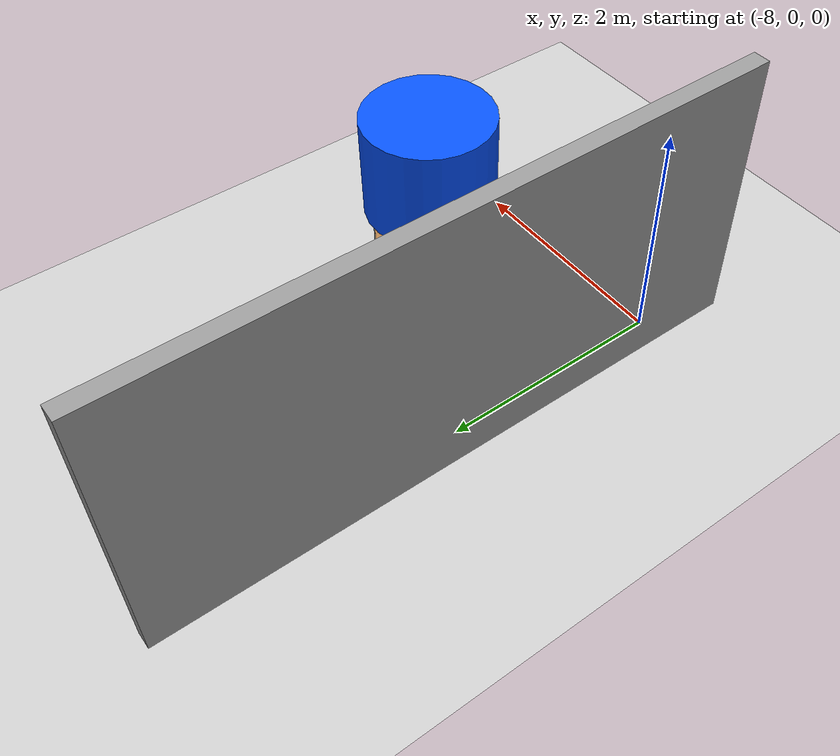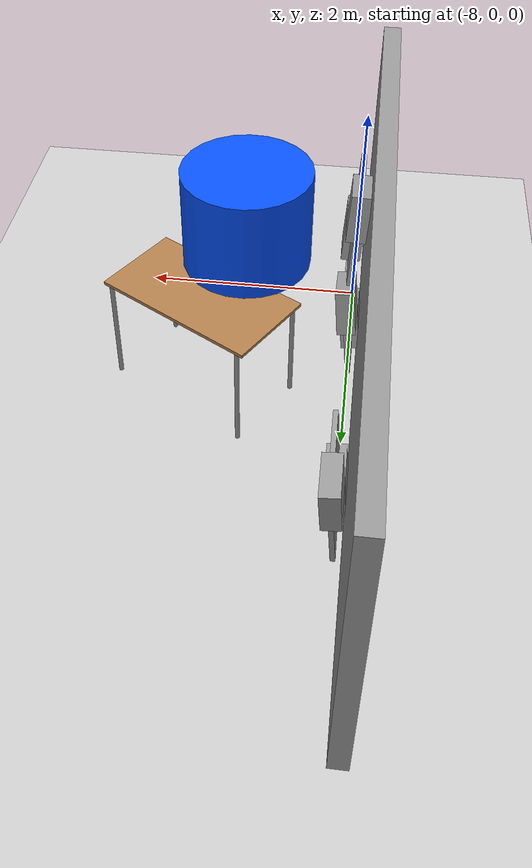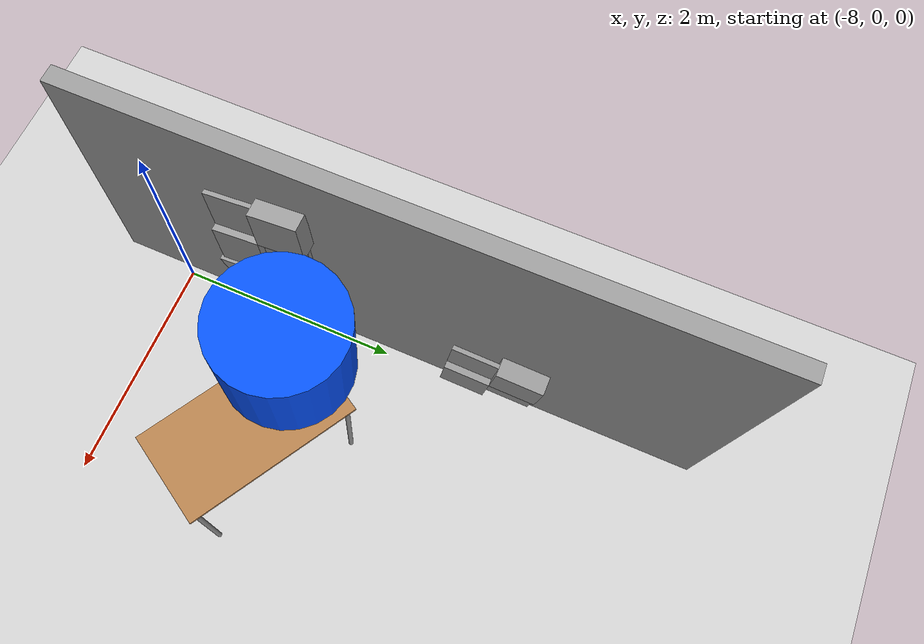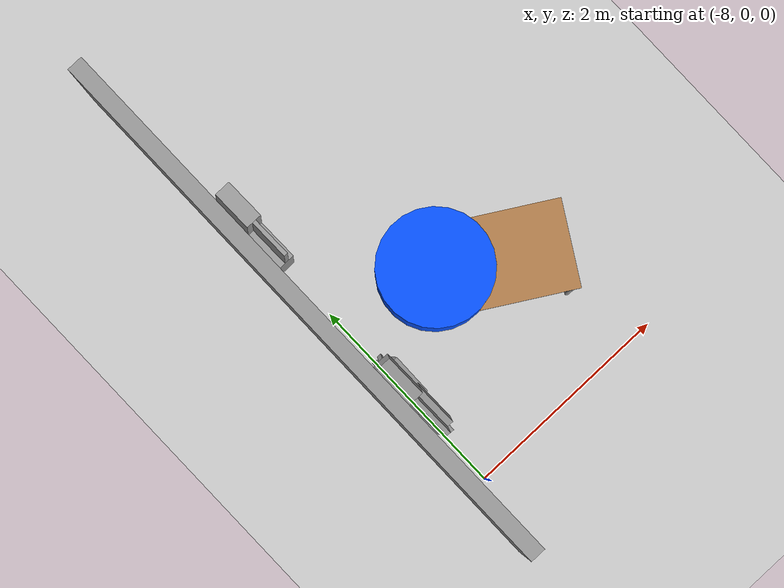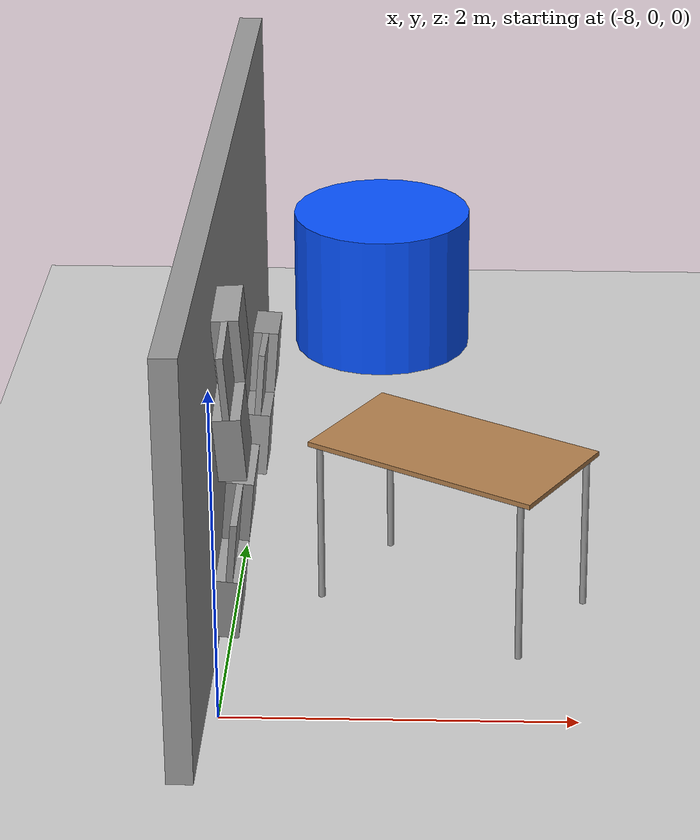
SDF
<sdf version="1.7">
 <world name="default">
  <model name="demo_clean">
   <static>1</static>
   <link name="Wall_0">
    <collision name="Wall_0_Collision">
     <geometry><box><size>5.5 0.15 2.5</size></box></geometry>
     <pose>0 0 1.25 0 -0 0</pose>
     <surface>
      <friction>
       <ode><mu>1</mu><mu2>1</mu2><fdir1>0 0 0</fdir1><slip1>0</slip1><slip2>0</slip2></ode>
       <torsional>
        <coefficient>1</coefficient>
        <patch_radius>0</patch_radius>
        <surface_radius>0</surface_radius>
        <use_patch_radius>1</use_patch_radius>
        <ode><slip>0</slip></ode>
       </torsional>
      </friction>
      <bounce><restitution_coefficient>0</restitution_coefficient><threshold>1e+06</threshold></bounce>
      <contact>
       <collide_without_contact>0</collide_without_contact>
       <collide_without_contact_bitmask>1</collide_without_contact_bitmask>
       <collide_bitmask>1</collide_bitmask>
       <ode>
        <soft_cfm>0</soft_cfm>
        <soft_erp>0.2</soft_erp>
        <kp>1e+13</kp>
        <kd>1</kd>
        <max_vel>0.01</max_vel>
        <min_depth>0</min_depth>
       </ode>
       <bullet>
        <split_impulse>1</split_impulse>
        <split_impulse_penetration_threshold>-0.01</split_impulse_penetration_threshold>
        <soft_cfm>0</soft_cfm>
        <soft_erp>0.2</soft_erp>
        <kp>1e+13</kp>
        <kd>1</kd>
       </bullet>
      </contact>
     </surface>
    </collision>
    <visual name="Wall_0_Visual">
     <geometry><box><size>5.5 0.15 2.5</size></box></geometry>
     <material>
      <script><name>Gazebo/Grey</name><uri>file://media/materials/scripts/gazebo.material</uri></script>
      <ambient>1 1 1 1</ambient>
      <shader type="pixel"><normal_map>default</normal_map></shader>
     </material>
     <pose>0 0 1.25 0 -0 0</pose>
    </visual>
    <pose>-8.14649 2.06618 0 0 0 -1.5708</pose>
   </link>
  </model>
  <model name="static_cylinder_1">
   <pose>-7.14228 1.58994 2 0 -0 0.601069</pose>
   <static>1</static>
   <allow_auto_disable>0</allow_auto_disable>
   <link name="link">
    <collision name="collision">
     <geometry><cylinder><radius>0.5</radius><length>0.8</length></cylinder></geometry>
     <max_contacts>20</max_contacts>
    </collision>
    <visual name="visual">
     <geometry><cylinder><radius>0.5</radius><length>0.8</length></cylinder></geometry>
     <material><ambient>0.0235294 0.321569 1 1</ambient><diffuse>0.0235294 0.321569 1 1</diffuse></material>
    </visual>
   </link>
  </model>
  <model name="ground_plane">
   <static>1</static>
   <link name="link">
    <collision name="collision">
     <geometry><plane><normal>0 0 1</normal><size>100 100</size></plane></geometry>
     <surface>
      <contact><collide_bitmask>65535</collide_bitmask></contact>
      <friction><ode><mu>100</mu><mu2>50</mu2></ode></friction>
     </surface>
    </collision>
    <visual name="visual">
     <cast_shadows>0</cast_shadows>
     <geometry><plane><normal>0 0 1</normal><size>100 100</size></plane></geometry>
     <material>
      <script><uri>file://media/materials/scripts/gazebo.material</uri><name>Gazebo/Grey</name></script>
     </material>
    </visual>
   </link>
  </model>
  <model name="wall_slate_9">
   <static>1</static>
   <link name="link_0">
    <inertial><mass>1</mass></inertial>
    <gravity>0</gravity>
    <visual name="visual">
     <pose>0 0.2 0.2 0 -0 0</pose>
     <geometry><box><size>0.16 0.4 0.4</size></box></geometry>
     <material>
      <lighting>1</lighting>
      <script><uri>file://media/materials/scripts/gazebo.material</uri><name>Gazebo/Grey</name></script>
      <shader type="pixel"><normal_map>__default__</normal_map></shader>
      <ambient>0.3 0.3 0.3 1</ambient>
      <diffuse>0.7 0.7 0.7 1</diffuse>
      <specular>0.01 0.01 0.01 1</specular>
      <emissive>0 0 0 1</emissive>
     </material>
    </visual>
    <visual name="ModelPreview_0::link_0::visual_1">
     <pose>0 0.2 -0.2 0 -0 0</pose>
     <geometry><box><size>0.04 0.4 0.4</size></box></geometry>
     <material>
      <lighting>1</lighting>
      <script><uri>file://media/materials/scripts/gazebo.material</uri><name>Gazebo/Grey</name></script>
      <shader type="pixel"><normal_map>__default__</normal_map></shader>
      <ambient>0.3 0.3 0.3 1</ambient>
      <diffuse>0.7 0.7 0.7 1</diffuse>
      <specular>0.01 0.01 0.01 1</specular>
      <emissive>0 0 0 1</emissive>
     </material>
    </visual>
    <visual name="ModelPreview_0::link_0::visual_2">
     <pose>0 -0.2 0.2 0 -0 0</pose>
     <geometry><box><size>0.04 0.4 0.4</size></box></geometry>
     <material>
      <lighting>1</lighting>
      <script><uri>file://media/materials/scripts/gazebo.material</uri><name>Gazebo/Grey</name></script>
      <shader type="pixel"><normal_map>__default__</normal_map></shader>
      <ambient>0.3 0.3 0.3 1</ambient>
      <diffuse>0.7 0.7 0.7 1</diffuse>
      <specular>0.01 0.01 0.01 1</specular>
      <emissive>0 0 0 1</emissive>
     </material>
    </visual>
    <visual name="ModelPreview_0::link_0::visual_3">
     <pose>0 -0.2 -0.2 0 -0 0</pose>
     <geometry><box><size>0.16 0.4 0.4</size></box></geometry>
     <material>
      <lighting>1</lighting>
      <script><uri>file://media/materials/scripts/gazebo.material</uri><name>Gazebo/Grey</name></script>
      <shader type="pixel"><normal_map>__default__</normal_map></shader>
      <ambient>0.3 0.3 0.3 1</ambient>
      <diffuse>0.7 0.7 0.7 1</diffuse>
      <specular>0.01 0.01 0.01 1</specular>
      <emissive>0 0 0 1</emissive>
     </material>
    </visual>
    <collision name="collision_2">
     <pose>0 -0.2 0.2 0 -0 0</pose>
     <geometry><box><size>0.04 0.4 0.4</size></box></geometry>
     <surface>
      <friction>
       <ode><mu>1</mu><mu2>1</mu2><fdir1>0 0 0</fdir1><slip1>0</slip1><slip2>0</slip2></ode>
       <torsional>
        <coefficient>1</coefficient>
        <patch_radius>0</patch_radius>
        <surface_radius>0</surface_radius>
        <use_patch_radius>1</use_patch_radius>
        <ode><slip>0</slip></ode>
       </torsional>
      </friction>
      <bounce><restitution_coefficient>0</restitution_coefficient><threshold>1e+06</threshold></bounce>
      <contact>
       <collide_without_contact>0</collide_without_contact>
       <collide_without_contact_bitmask>1</collide_without_contact_bitmask>
       <collide_bitmask>1</collide_bitmask>
       <ode>
        <soft_cfm>0</soft_cfm>
        <soft_erp>0.2</soft_erp>
        <kp>1e+13</kp>
        <kd>1</kd>
        <max_vel>0.01</max_vel>
        <min_depth>0</min_depth>
       </ode>
       <bullet>
        <split_impulse>1</split_impulse>
        <split_impulse_penetration_threshold>-0.01</split_impulse_penetration_threshold>
        <soft_cfm>0</soft_cfm>
        <soft_erp>0.2</soft_erp>
        <kp>1e+13</kp>
        <kd>1</kd>
       </bullet>
      </contact>
     </surface>
    </collision>
    <collision name="collision_1">
     <pose>0 0.2 -0.2 0 -0 0</pose>
     <geometry><box><size>0.04 0.4 0.4</size></box></geometry>
     <surface>
      <friction>
       <ode><mu>1</mu><mu2>1</mu2><fdir1>0 0 0</fdir1><slip1>0</slip1><slip2>0</slip2></ode>
       <torsional>
        <coefficient>1</coefficient>
        <patch_radius>0</patch_radius>
        <surface_radius>0</surface_radius>
        <use_patch_radius>1</use_patch_radius>
        <ode><slip>0</slip></ode>
       </torsional>
      </friction>
      <bounce><restitution_coefficient>0</restitution_coefficient><threshold>1e+06</threshold></bounce>
      <contact>
       <collide_without_contact>0</collide_without_contact>
       <collide_without_contact_bitmask>1</collide_without_contact_bitmask>
       <collide_bitmask>1</collide_bitmask>
       <ode>
        <soft_cfm>0</soft_cfm>
        <soft_erp>0.2</soft_erp>
        <kp>1e+13</kp>
        <kd>1</kd>
        <max_vel>0.01</max_vel>
        <min_depth>0</min_depth>
       </ode>
       <bullet>
        <split_impulse>1</split_impulse>
        <split_impulse_penetration_threshold>-0.01</split_impulse_penetration_threshold>
        <soft_cfm>0</soft_cfm>
        <soft_erp>0.2</soft_erp>
        <kp>1e+13</kp>
        <kd>1</kd>
       </bullet>
      </contact>
     </surface>
    </collision>
    <collision name="collision_4">
     <pose>0 0.2 0.2 0 -0 0</pose>
     <geometry><box><size>0.16 0.4 0.4</size></box></geometry>
     <surface>
      <friction>
       <ode><mu>1</mu><mu2>1</mu2><fdir1>0 0 0</fdir1><slip1>0</slip1><slip2>0</slip2></ode>
       <torsional>
        <coefficient>1</coefficient>
        <patch_radius>0</patch_radius>
        <surface_radius>0</surface_radius>
        <use_patch_radius>1</use_patch_radius>
        <ode><slip>0</slip></ode>
       </torsional>
      </friction>
      <bounce><restitution_coefficient>0</restitution_coefficient><threshold>1e+06</threshold></bounce>
      <contact>
       <collide_without_contact>0</collide_without_contact>
       <collide_without_contact_bitmask>1</collide_without_contact_bitmask>
       <collide_bitmask>1</collide_bitmask>
       <ode>
        <soft_cfm>0</soft_cfm>
        <soft_erp>0.2</soft_erp>
        <kp>1e+13</kp>
        <kd>1</kd>
        <max_vel>0.01</max_vel>
        <min_depth>0</min_depth>
       </ode>
       <bullet>
        <split_impulse>1</split_impulse>
        <split_impulse_penetration_threshold>-0.01</split_impulse_penetration_threshold>
        <soft_cfm>0</soft_cfm>
        <soft_erp>0.2</soft_erp>
        <kp>1e+13</kp>
        <kd>1</kd>
       </bullet>
      </contact>
     </surface>
    </collision>
    <collision name="collision_3">
     <pose>0 -0.2 -0.2 0 -0 0</pose>
     <geometry><box><size>0.16 0.4 0.4</size></box></geometry>
     <surface>
      <friction>
       <ode><mu>1</mu><mu2>1</mu2><fdir1>0 0 0</fdir1><slip1>0</slip1><slip2>0</slip2></ode>
       <torsional>
        <coefficient>1</coefficient>
        <patch_radius>0</patch_radius>
        <surface_radius>0</surface_radius>
        <use_patch_radius>1</use_patch_radius>
        <ode><slip>0</slip></ode>
       </torsional>
      </friction>
      <bounce><restitution_coefficient>0</restitution_coefficient><threshold>1e+06</threshold></bounce>
      <contact>
       <collide_without_contact>0</collide_without_contact>
       <collide_without_contact_bitmask>1</collide_without_contact_bitmask>
       <collide_bitmask>1</collide_bitmask>
       <ode>
        <soft_cfm>0</soft_cfm>
        <soft_erp>0.2</soft_erp>
        <kp>1e+13</kp>
        <kd>1</kd>
        <max_vel>0.01</max_vel>
        <min_depth>0</min_depth>
       </ode>
       <bullet>
        <split_impulse>1</split_impulse>
        <split_impulse_penetration_threshold>-0.01</split_impulse_penetration_threshold>
        <soft_cfm>0</soft_cfm>
        <soft_erp>0.2</soft_erp>
        <kp>1e+13</kp>
        <kd>1</kd>
       </bullet>
      </contact>
     </surface>
    </collision>
   </link>
   <pose>-7.97149 0.966181 0.6 0.16 0.1 0.0049</pose>
  </model>
  <model name="wall_slate_18">
   <static>1</static>
   <link name="link_0">
    <inertial><mass>1</mass></inertial>
    <gravity>0</gravity>
    <visual name="visual">
     <pose>0 0.2 0.2 0 -0 0</pose>
     <geometry><box><size>0.16 0.4 0.4</size></box></geometry>
     <material>
      <lighting>1</lighting>
      <script><uri>file://media/materials/scripts/gazebo.material</uri><name>Gazebo/Grey</name></script>
      <shader type="pixel"><normal_map>__default__</normal_map></shader>
      <ambient>0.3 0.3 0.3 1</ambient>
      <diffuse>0.7 0.7 0.7 1</diffuse>
      <specular>0.01 0.01 0.01 1</specular>
      <emissive>0 0 0 1</emissive>
     </material>
    </visual>
    <visual name="ModelPreview_0::link_0::visual_1">
     <pose>0 0.2 -0.2 0 -0 0</pose>
     <geometry><box><size>0.04 0.4 0.4</size></box></geometry>
     <material>
      <lighting>1</lighting>
      <script><uri>file://media/materials/scripts/gazebo.material</uri><name>Gazebo/Grey</name></script>
      <shader type="pixel"><normal_map>__default__</normal_map></shader>
      <ambient>0.3 0.3 0.3 1</ambient>
      <diffuse>0.7 0.7 0.7 1</diffuse>
      <specular>0.01 0.01 0.01 1</specular>
      <emissive>0 0 0 1</emissive>
     </material>
    </visual>
    <visual name="ModelPreview_0::link_0::visual_2">
     <pose>0 -0.2 0.2 0 -0 0</pose>
     <geometry><box><size>0.04 0.4 0.4</size></box></geometry>
     <material>
      <lighting>1</lighting>
      <script><uri>file://media/materials/scripts/gazebo.material</uri><name>Gazebo/Grey</name></script>
      <shader type="pixel"><normal_map>__default__</normal_map></shader>
      <ambient>0.3 0.3 0.3 1</ambient>
      <diffuse>0.7 0.7 0.7 1</diffuse>
      <specular>0.01 0.01 0.01 1</specular>
      <emissive>0 0 0 1</emissive>
     </material>
    </visual>
    <visual name="ModelPreview_0::link_0::visual_3">
     <pose>0 -0.2 -0.2 0 -0 0</pose>
     <geometry><box><size>0.16 0.4 0.4</size></box></geometry>
     <material>
      <lighting>1</lighting>
      <script><uri>file://media/materials/scripts/gazebo.material</uri><name>Gazebo/Grey</name></script>
      <shader type="pixel"><normal_map>__default__</normal_map></shader>
      <ambient>0.3 0.3 0.3 1</ambient>
      <diffuse>0.7 0.7 0.7 1</diffuse>
      <specular>0.01 0.01 0.01 1</specular>
      <emissive>0 0 0 1</emissive>
     </material>
    </visual>
    <collision name="collision_2">
     <pose>0 -0.2 0.2 0 -0 0</pose>
     <geometry><box><size>0.04 0.4 0.4</size></box></geometry>
     <surface>
      <friction>
       <ode><mu>1</mu><mu2>1</mu2><fdir1>0 0 0</fdir1><slip1>0</slip1><slip2>0</slip2></ode>
       <torsional>
        <coefficient>1</coefficient>
        <patch_radius>0</patch_radius>
        <surface_radius>0</surface_radius>
        <use_patch_radius>1</use_patch_radius>
        <ode><slip>0</slip></ode>
       </torsional>
      </friction>
      <bounce><restitution_coefficient>0</restitution_coefficient><threshold>1e+06</threshold></bounce>
      <contact>
       <collide_without_contact>0</collide_without_contact>
       <collide_without_contact_bitmask>1</collide_without_contact_bitmask>
       <collide_bitmask>1</collide_bitmask>
       <ode>
        <soft_cfm>0</soft_cfm>
        <soft_erp>0.2</soft_erp>
        <kp>1e+13</kp>
        <kd>1</kd>
        <max_vel>0.01</max_vel>
        <min_depth>0</min_depth>
       </ode>
       <bullet>
        <split_impulse>1</split_impulse>
        <split_impulse_penetration_threshold>-0.01</split_impulse_penetration_threshold>
        <soft_cfm>0</soft_cfm>
        <soft_erp>0.2</soft_erp>
        <kp>1e+13</kp>
        <kd>1</kd>
       </bullet>
      </contact>
     </surface>
    </collision>
    <collision name="collision_1">
     <pose>0 0.2 -0.2 0 -0 0</pose>
     <geometry><box><size>0.04 0.4 0.4</size></box></geometry>
     <surface>
      <friction>
       <ode><mu>1</mu><mu2>1</mu2><fdir1>0 0 0</fdir1><slip1>0</slip1><slip2>0</slip2></ode>
       <torsional>
        <coefficient>1</coefficient>
        <patch_radius>0</patch_radius>
        <surface_radius>0</surface_radius>
        <use_patch_radius>1</use_patch_radius>
        <ode><slip>0</slip></ode>
       </torsional>
      </friction>
      <bounce><restitution_coefficient>0</restitution_coefficient><threshold>1e+06</threshold></bounce>
      <contact>
       <collide_without_contact>0</collide_without_contact>
       <collide_without_contact_bitmask>1</collide_without_contact_bitmask>
       <collide_bitmask>1</collide_bitmask>
       <ode>
        <soft_cfm>0</soft_cfm>
        <soft_erp>0.2</soft_erp>
        <kp>1e+13</kp>
        <kd>1</kd>
        <max_vel>0.01</max_vel>
        <min_depth>0</min_depth>
       </ode>
       <bullet>
        <split_impulse>1</split_impulse>
        <split_impulse_penetration_threshold>-0.01</split_impulse_penetration_threshold>
        <soft_cfm>0</soft_cfm>
        <soft_erp>0.2</soft_erp>
        <kp>1e+13</kp>
        <kd>1</kd>
       </bullet>
      </contact>
     </surface>
    </collision>
    <collision name="collision_4">
     <pose>0 0.2 0.2 0 -0 0</pose>
     <geometry><box><size>0.16 0.4 0.4</size></box></geometry>
     <surface>
      <friction>
       <ode><mu>1</mu><mu2>1</mu2><fdir1>0 0 0</fdir1><slip1>0</slip1><slip2>0</slip2></ode>
       <torsional>
        <coefficient>1</coefficient>
        <patch_radius>0</patch_radius>
        <surface_radius>0</surface_radius>
        <use_patch_radius>1</use_patch_radius>
        <ode><slip>0</slip></ode>
       </torsional>
      </friction>
      <bounce><restitution_coefficient>0</restitution_coefficient><threshold>1e+06</threshold></bounce>
      <contact>
       <collide_without_contact>0</collide_without_contact>
       <collide_without_contact_bitmask>1</collide_without_contact_bitmask>
       <collide_bitmask>1</collide_bitmask>
       <ode>
        <soft_cfm>0</soft_cfm>
        <soft_erp>0.2</soft_erp>
        <kp>1e+13</kp>
        <kd>1</kd>
        <max_vel>0.01</max_vel>
        <min_depth>0</min_depth>
       </ode>
       <bullet>
        <split_impulse>1</split_impulse>
        <split_impulse_penetration_threshold>-0.01</split_impulse_penetration_threshold>
        <soft_cfm>0</soft_cfm>
        <soft_erp>0.2</soft_erp>
        <kp>1e+13</kp>
        <kd>1</kd>
       </bullet>
      </contact>
     </surface>
    </collision>
    <collision name="collision_3">
     <pose>0 -0.2 -0.2 0 -0 0</pose>
     <geometry><box><size>0.16 0.4 0.4</size></box></geometry>
     <surface>
      <friction>
       <ode><mu>1</mu><mu2>1</mu2><fdir1>0 0 0</fdir1><slip1>0</slip1><slip2>0</slip2></ode>
       <torsional>
        <coefficient>1</coefficient>
        <patch_radius>0</patch_radius>
        <surface_radius>0</surface_radius>
        <use_patch_radius>1</use_patch_radius>
        <ode><slip>0</slip></ode>
       </torsional>
      </friction>
      <bounce><restitution_coefficient>0</restitution_coefficient><threshold>1e+06</threshold></bounce>
      <contact>
       <collide_without_contact>0</collide_without_contact>
       <collide_without_contact_bitmask>1</collide_without_contact_bitmask>
       <collide_bitmask>1</collide_bitmask>
       <ode>
        <soft_cfm>0</soft_cfm>
        <soft_erp>0.2</soft_erp>
        <kp>1e+13</kp>
        <kd>1</kd>
        <max_vel>0.01</max_vel>
        <min_depth>0</min_depth>
       </ode>
       <bullet>
        <split_impulse>1</split_impulse>
        <split_impulse_penetration_threshold>-0.01</split_impulse_penetration_threshold>
        <soft_cfm>0</soft_cfm>
        <soft_erp>0.2</soft_erp>
        <kp>1e+13</kp>
        <kd>1</kd>
       </bullet>
      </contact>
     </surface>
    </collision>
   </link>
   <pose>-7.97149 0.966181 1.6 0.12 -0.06 0.0049</pose>
  </model>
  <model name="wall_slate_62">
   <static>1</static>
   <link name="link_0">
    <inertial><mass>1</mass></inertial>
    <gravity>0</gravity>
    <visual name="visual">
     <pose>0 0.2 0.2 0 -0 0</pose>
     <geometry><box><size>0.16 0.4 0.4</size></box></geometry>
     <material>
      <lighting>1</lighting>
      <script><uri>file://media/materials/scripts/gazebo.material</uri><name>Gazebo/Grey</name></script>
      <shader type="pixel"><normal_map>__default__</normal_map></shader>
      <ambient>0.3 0.3 0.3 1</ambient>
      <diffuse>0.7 0.7 0.7 1</diffuse>
      <specular>0.01 0.01 0.01 1</specular>
      <emissive>0 0 0 1</emissive>
     </material>
    </visual>
    <visual name="ModelPreview_0::link_0::visual_1">
     <pose>0 0.2 -0.2 0 -0 0</pose>
     <geometry><box><size>0.04 0.4 0.4</size></box></geometry>
     <material>
      <lighting>1</lighting>
      <script><uri>file://media/materials/scripts/gazebo.material</uri><name>Gazebo/Grey</name></script>
      <shader type="pixel"><normal_map>__default__</normal_map></shader>
      <ambient>0.3 0.3 0.3 1</ambient>
      <diffuse>0.7 0.7 0.7 1</diffuse>
      <specular>0.01 0.01 0.01 1</specular>
      <emissive>0 0 0 1</emissive>
     </material>
    </visual>
    <visual name="ModelPreview_0::link_0::visual_2">
     <pose>0 -0.2 0.2 0 -0 0</pose>
     <geometry><box><size>0.04 0.4 0.4</size></box></geometry>
     <material>
      <lighting>1</lighting>
      <script><uri>file://media/materials/scripts/gazebo.material</uri><name>Gazebo/Grey</name></script>
      <shader type="pixel"><normal_map>__default__</normal_map></shader>
      <ambient>0.3 0.3 0.3 1</ambient>
      <diffuse>0.7 0.7 0.7 1</diffuse>
      <specular>0.01 0.01 0.01 1</specular>
      <emissive>0 0 0 1</emissive>
     </material>
    </visual>
    <visual name="ModelPreview_0::link_0::visual_3">
     <pose>0 -0.2 -0.2 0 -0 0</pose>
     <geometry><box><size>0.16 0.4 0.4</size></box></geometry>
     <material>
      <lighting>1</lighting>
      <script><uri>file://media/materials/scripts/gazebo.material</uri><name>Gazebo/Grey</name></script>
      <shader type="pixel"><normal_map>__default__</normal_map></shader>
      <ambient>0.3 0.3 0.3 1</ambient>
      <diffuse>0.7 0.7 0.7 1</diffuse>
      <specular>0.01 0.01 0.01 1</specular>
      <emissive>0 0 0 1</emissive>
     </material>
    </visual>
    <collision name="collision_2">
     <pose>0 -0.2 0.2 0 -0 0</pose>
     <geometry><box><size>0.04 0.4 0.4</size></box></geometry>
     <surface>
      <friction>
       <ode><mu>1</mu><mu2>1</mu2><fdir1>0 0 0</fdir1><slip1>0</slip1><slip2>0</slip2></ode>
       <torsional>
        <coefficient>1</coefficient>
        <patch_radius>0</patch_radius>
        <surface_radius>0</surface_radius>
        <use_patch_radius>1</use_patch_radius>
        <ode><slip>0</slip></ode>
       </torsional>
      </friction>
      <bounce><restitution_coefficient>0</restitution_coefficient><threshold>1e+06</threshold></bounce>
      <contact>
       <collide_without_contact>0</collide_without_contact>
       <collide_without_contact_bitmask>1</collide_without_contact_bitmask>
       <collide_bitmask>1</collide_bitmask>
       <ode>
        <soft_cfm>0</soft_cfm>
        <soft_erp>0.2</soft_erp>
        <kp>1e+13</kp>
        <kd>1</kd>
        <max_vel>0.01</max_vel>
        <min_depth>0</min_depth>
       </ode>
       <bullet>
        <split_impulse>1</split_impulse>
        <split_impulse_penetration_threshold>-0.01</split_impulse_penetration_threshold>
        <soft_cfm>0</soft_cfm>
        <soft_erp>0.2</soft_erp>
        <kp>1e+13</kp>
        <kd>1</kd>
       </bullet>
      </contact>
     </surface>
    </collision>
    <collision name="collision_1">
     <pose>0 0.2 -0.2 0 -0 0</pose>
     <geometry><box><size>0.04 0.4 0.4</size></box></geometry>
     <surface>
      <friction>
       <ode><mu>1</mu><mu2>1</mu2><fdir1>0 0 0</fdir1><slip1>0</slip1><slip2>0</slip2></ode>
       <torsional>
        <coefficient>1</coefficient>
        <patch_radius>0</patch_radius>
        <surface_radius>0</surface_radius>
        <use_patch_radius>1</use_patch_radius>
        <ode><slip>0</slip></ode>
       </torsional>
      </friction>
      <bounce><restitution_coefficient>0</restitution_coefficient><threshold>1e+06</threshold></bounce>
      <contact>
       <collide_without_contact>0</collide_without_contact>
       <collide_without_contact_bitmask>1</collide_without_contact_bitmask>
       <collide_bitmask>1</collide_bitmask>
       <ode>
        <soft_cfm>0</soft_cfm>
        <soft_erp>0.2</soft_erp>
        <kp>1e+13</kp>
        <kd>1</kd>
        <max_vel>0.01</max_vel>
        <min_depth>0</min_depth>
       </ode>
       <bullet>
        <split_impulse>1</split_impulse>
        <split_impulse_penetration_threshold>-0.01</split_impulse_penetration_threshold>
        <soft_cfm>0</soft_cfm>
        <soft_erp>0.2</soft_erp>
        <kp>1e+13</kp>
        <kd>1</kd>
       </bullet>
      </contact>
     </surface>
    </collision>
    <collision name="collision_4">
     <pose>0 0.2 0.2 0 -0 0</pose>
     <geometry><box><size>0.16 0.4 0.4</size></box></geometry>
     <surface>
      <friction>
       <ode><mu>1</mu><mu2>1</mu2><fdir1>0 0 0</fdir1><slip1>0</slip1><slip2>0</slip2></ode>
       <torsional>
        <coefficient>1</coefficient>
        <patch_radius>0</patch_radius>
        <surface_radius>0</surface_radius>
        <use_patch_radius>1</use_patch_radius>
        <ode><slip>0</slip></ode>
       </torsional>
      </friction>
      <bounce><restitution_coefficient>0</restitution_coefficient><threshold>1e+06</threshold></bounce>
      <contact>
       <collide_without_contact>0</collide_without_contact>
       <collide_without_contact_bitmask>1</collide_without_contact_bitmask>
       <collide_bitmask>1</collide_bitmask>
       <ode>
        <soft_cfm>0</soft_cfm>
        <soft_erp>0.2</soft_erp>
        <kp>1e+13</kp>
        <kd>1</kd>
        <max_vel>0.01</max_vel>
        <min_depth>0</min_depth>
       </ode>
       <bullet>
        <split_impulse>1</split_impulse>
        <split_impulse_penetration_threshold>-0.01</split_impulse_penetration_threshold>
        <soft_cfm>0</soft_cfm>
        <soft_erp>0.2</soft_erp>
        <kp>1e+13</kp>
        <kd>1</kd>
       </bullet>
      </contact>
     </surface>
    </collision>
    <collision name="collision_3">
     <pose>0 -0.2 -0.2 0 -0 0</pose>
     <geometry><box><size>0.16 0.4 0.4</size></box></geometry>
     <surface>
      <friction>
       <ode><mu>1</mu><mu2>1</mu2><fdir1>0 0 0</fdir1><slip1>0</slip1><slip2>0</slip2></ode>
       <torsional>
        <coefficient>1</coefficient>
        <patch_radius>0</patch_radius>
        <surface_radius>0</surface_radius>
        <use_patch_radius>1</use_patch_radius>
        <ode><slip>0</slip></ode>
       </torsional>
      </friction>
      <bounce><restitution_coefficient>0</restitution_coefficient><threshold>1e+06</threshold></bounce>
      <contact>
       <collide_without_contact>0</collide_without_contact>
       <collide_without_contact_bitmask>1</collide_without_contact_bitmask>
       <collide_bitmask>1</collide_bitmask>
       <ode>
        <soft_cfm>0</soft_cfm>
        <soft_erp>0.2</soft_erp>
        <kp>1e+13</kp>
        <kd>1</kd>
        <max_vel>0.01</max_vel>
        <min_depth>0</min_depth>
       </ode>
       <bullet>
        <split_impulse>1</split_impulse>
        <split_impulse_penetration_threshold>-0.01</split_impulse_penetration_threshold>
        <soft_cfm>0</soft_cfm>
        <soft_erp>0.2</soft_erp>
        <kp>1e+13</kp>
        <kd>1</kd>
       </bullet>
      </contact>
     </surface>
    </collision>
   </link>
   <pose>-7.97149 2.96618 0.6 -0.06 0.08 0.0049</pose>
  </model>
  <model name="table">
   <static>1</static>
   <link name="link">
    <collision name="surface">
     <pose>0 0 1 0 -0 0</pose>
     <geometry><box><size>1.5 0.8 0.03</size></box></geometry>
     <surface><friction><ode><mu>0.6</mu><mu2>0.6</mu2></ode></friction></surface>
    </collision>
    <visual name="visual1">
     <pose>0 0 1 0 -0 0</pose>
     <geometry><box><size>1.5 0.8 0.03</size></box></geometry>
     <material>
      <script><uri>file://media/materials/scripts/gazebo.material</uri><name>Gazebo/Wood</name></script>
     </material>
    </visual>
    <collision name="front_left_leg">
     <pose>0.68 0.38 0.5 0 -0 0</pose>
     <geometry><cylinder><radius>0.02</radius><length>1</length></cylinder></geometry>
    </collision>
    <visual name="front_left_leg">
     <pose>0.68 0.38 0.5 0 -0 0</pose>
     <geometry><cylinder><radius>0.02</radius><length>1</length></cylinder></geometry>
     <material>
      <script><uri>file://media/materials/scripts/gazebo.material</uri><name>Gazebo/Grey</name></script>
     </material>
    </visual>
    <collision name="front_right_leg">
     <pose>0.68 -0.38 0.5 0 -0 0</pose>
     <geometry><cylinder><radius>0.02</radius><length>1</length></cylinder></geometry>
    </collision>
    <visual name="front_right_leg">
     <pose>0.68 -0.38 0.5 0 -0 0</pose>
     <geometry><cylinder><radius>0.02</radius><length>1</length></cylinder></geometry>
     <material>
      <script><uri>file://media/materials/scripts/gazebo.material</uri><name>Gazebo/Grey</name></script>
     </material>
    </visual>
    <collision name="back_right_leg">
     <pose>-0.68 -0.38 0.5 0 -0 0</pose>
     <geometry><cylinder><radius>0.02</radius><length>1</length></cylinder></geometry>
    </collision>
    <visual name="back_right_leg">
     <pose>-0.68 -0.38 0.5 0 -0 0</pose>
     <geometry><cylinder><radius>0.02</radius><length>1</length></cylinder></geometry>
     <material>
      <script><uri>file://media/materials/scripts/gazebo.material</uri><name>Gazebo/Grey</name></script>
     </material>
    </visual>
    <collision name="back_left_leg">
     <pose>-0.68 0.38 0.5 0 -0 0</pose>
     <geometry><cylinder><radius>0.02</radius><length>1</length></cylinder></geometry>
    </collision>
    <visual name="back_left_leg">
     <pose>-0.68 0.38 0.5 0 -0 0</pose>
     <geometry><cylinder><radius>0.02</radius><length>1</length></cylinder></geometry>
     <material>
      <script><uri>file://media/materials/scripts/gazebo.material</uri><name>Gazebo/Grey</name></script>
     </material>
    </visual>
   </link>
   <pose>-6.7249 1.36936 0 0 0 -0.5352</pose>
  </model>
 </world>
</sdf>
